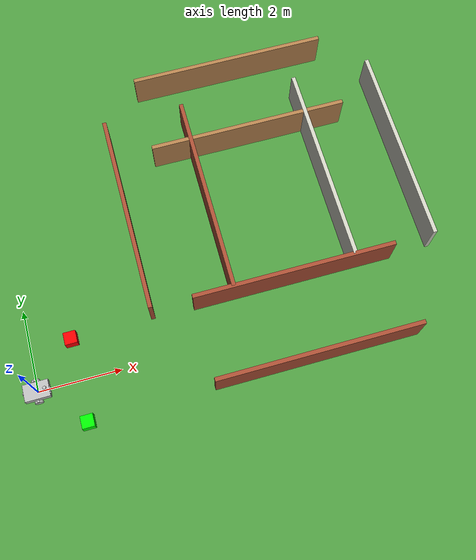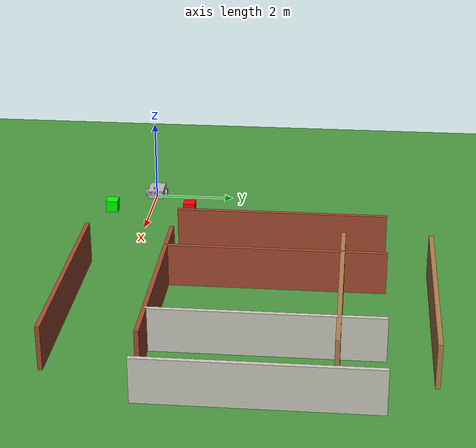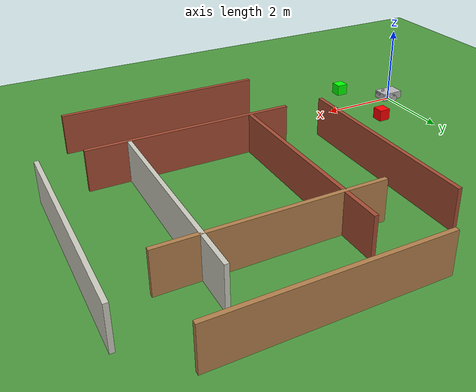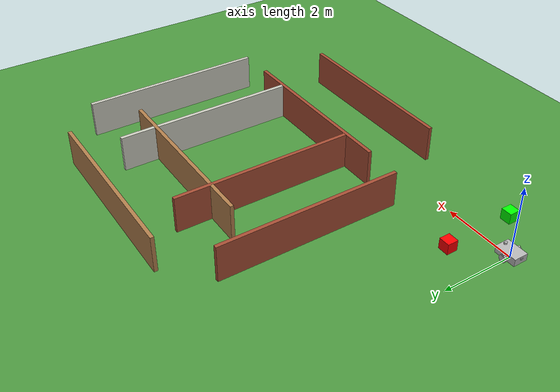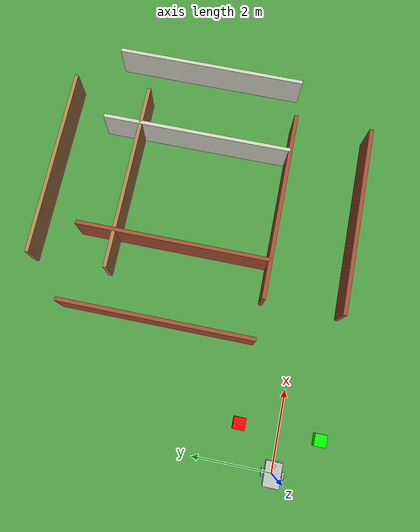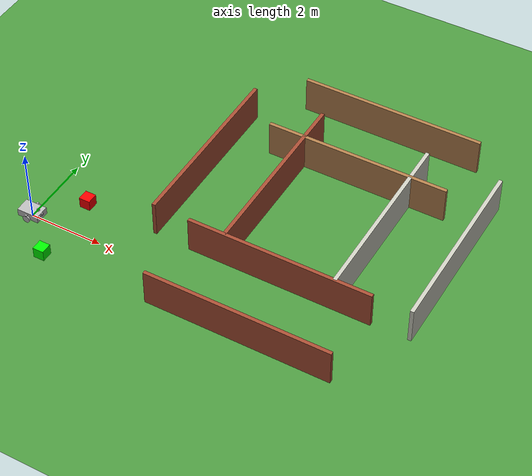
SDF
<?xml version="1.0"?>
<sdf version="1.6">
  <world name="default">
    <include><uri>model://sun</uri></include>

    <!-- ÇİM ZEMİN (Gazebo/Grass dokusu - organik/düzensiz doku) -->
    <model name="ground_plane">
      <static>true</static>
      <link name="link">
        <collision name="collision">
          <geometry><plane><normal>0 0 1</normal><size>100 100</size></plane></geometry>
        </collision>
        <visual name="visual">
          <geometry><plane><normal>0 0 1</normal><size>100 100</size></plane></geometry>
          <material>
            <script>
              <uri>file://media/materials/scripts/gazebo.material</uri>
              <name>Gazebo/Grass</name>
            </script>
          </material>
        </visual>
      </link>
    </model>

    <!-- RENKLİ REFERANS KUTULARI (Modül 4'ten) -->
    <model name="red_box">
      <static>true</static>
      <pose>1 1 0.15 0 0 0</pose>
      <link name="link">
        <visual name="visual">
          <geometry><box><size>0.3 0.3 0.3</size></box></geometry>
          <material><ambient>1 0 0 1</ambient><diffuse>1 0 0 1</diffuse></material>
        </visual>
        <collision name="collision"><geometry><box><size>0.3 0.3 0.3</size></box></geometry></collision>
      </link>
    </model>

    <model name="green_box">
      <static>true</static>
      <pose>1 -1 0.15 0 0 0</pose>
      <link name="link">
        <visual name="visual">
          <geometry><box><size>0.3 0.3 0.3</size></box></geometry>
          <material><ambient>0 1 0 1</ambient><diffuse>0 1 0 1</diffuse></material>
        </visual>
        <collision name="collision"><geometry><box><size>0.3 0.3 0.3</size></box></geometry></collision>
      </link>
    </model>

    <!-- KAPALI DÖNGÜ KORİDOR PARKURU (SLAM Loop Closure Testi İçin) -->
    <!-- KOL 1 (Doğu Yönü: leg1) -->
    <model name="wall_leg1_south">
      <static>true</static>
      <pose>6.5 -1 0.5 0 0 0</pose>
      <link name="link">
        <collision name="collision"><geometry><box><size>5 0.1 1</size></box></geometry></collision>
        <visual name="visual">
          <geometry><box><size>5 0.1 1</size></box></geometry>
          <material><script><uri>file://media/materials/scripts/gazebo.material</uri><name>Gazebo/Bricks</name></script></material>
        </visual>
      </link>
    </model>
    <model name="wall_leg1_north">
      <static>true</static>
      <pose>6.5 1 0.5 0 0 0</pose>
      <link name="link">
        <collision name="collision"><geometry><box><size>5 0.1 1</size></box></geometry></collision>
        <visual name="visual">
          <geometry><box><size>5 0.1 1</size></box></geometry>
          <material><script><uri>file://media/materials/scripts/gazebo.material</uri><name>Gazebo/Bricks</name></script></material>
        </visual>
      </link>
    </model>

    <!-- KOL 2 (Kuzey Yönü: leg2) -->
    <model name="wall_leg2_west">
      <static>true</static>
      <pose>8 3.5 0.5 0 0 0</pose>
      <link name="link">
        <collision name="collision"><geometry><box><size>0.1 5 1</size></box></geometry></collision>
        <visual name="visual">
          <geometry><box><size>0.1 5 1</size></box></geometry>
          <material><script><uri>file://media/materials/scripts/gazebo.material</uri><name>Gazebo/PaintedWall</name></script></material>
        </visual>
      </link>
    </model>
    <model name="wall_leg2_east">
      <static>true</static>
      <pose>10 3.5 0.5 0 0 0</pose>
      <link name="link">
        <collision name="collision"><geometry><box><size>0.1 5 1</size></box></geometry></collision>
        <visual name="visual">
          <geometry><box><size>0.1 5 1</size></box></geometry>
          <material><script><uri>file://media/materials/scripts/gazebo.material</uri><name>Gazebo/PaintedWall</name></script></material>
        </visual>
      </link>
    </model>

    <!-- KOL 3 (Batı Yönü: leg3) -->
    <model name="wall_leg3_south">
      <static>true</static>
      <pose>6.5 5 0.5 0 0 0</pose>
      <link name="link">
        <collision name="collision"><geometry><box><size>5 0.1 1</size></box></geometry></collision>
        <visual name="visual">
          <geometry><box><size>5 0.1 1</size></box></geometry>
          <material><script><uri>file://media/materials/scripts/gazebo.material</uri><name>Gazebo/Wood</name></script></material>
        </visual>
      </link>
    </model>
    <model name="wall_leg3_north">
      <static>true</static>
      <pose>6.5 7 0.5 0 0 0</pose>
      <link name="link">
        <collision name="collision"><geometry><box><size>5 0.1 1</size></box></geometry></collision>
        <visual name="visual">
          <geometry><box><size>5 0.1 1</size></box></geometry>
          <material><script><uri>file://media/materials/scripts/gazebo.material</uri><name>Gazebo/Wood</name></script></material>
        </visual>
      </link>
    </model>

    <!-- KOL 4 (Güney Yönü: leg4 - Döngü Birleşimi) -->
    <model name="wall_leg4_west">
      <static>true</static>
      <pose>3 3.5 0.5 0 0 0</pose>
      <link name="link">
        <collision name="collision"><geometry><box><size>0.1 5 1</size></box></geometry></collision>
        <visual name="visual">
          <geometry><box><size>0.1 5 1</size></box></geometry>
          <material><script><uri>file://media/materials/scripts/gazebo.material</uri><name>Gazebo/Bricks</name></script></material>
        </visual>
      </link>
    </model>
    <model name="wall_leg4_east">
      <static>true</static>
      <pose>5 3.5 0.5 0 0 0</pose>
      <link name="link">
        <collision name="collision"><geometry><box><size>0.1 5 1</size></box></geometry></collision>
        <visual name="visual">
          <geometry><box><size>0.1 5 1</size></box></geometry>
          <material><script><uri>file://media/materials/scripts/gazebo.material</uri><name>Gazebo/Bricks</name></script></material>
        </visual>
      </link>
    </model>

    <!-- İKA ROVER (5 KAMERALI ROBOT MODELİ)        -->
    <model name="ika_rover">

        <!-- GÖVDE -->
        <link name="base_link">
          <pose>0 0 0.15 0 0 0</pose>
          <inertial>
            <mass>5.0</mass>
            <inertia>
              <ixx>0.1</ixx><iyy>0.1</iyy><izz>0.1</izz>
              <ixy>0</ixy><ixz>0</ixz><iyz>0</iyz>
            </inertia>
          </inertial>
          <collision name="base_collision">
            <geometry><box><size>0.6 0.4 0.2</size></box></geometry>
          </collision>
          <visual name="base_visual">
            <geometry><box><size>0.6 0.4 0.2</size></box></geometry>
          </visual>
        </link>

        <!-- SOL TEKER -->
        <link name="left_wheel">
          <pose>0 0.25 0.1 1.5708 0 0</pose>
          <inertial>
            <mass>0.5</mass>
            <inertia>
              <ixx>0.01</ixx><iyy>0.01</iyy><izz>0.01</izz>
              <ixy>0</ixy><ixz>0</ixz><iyz>0</iyz>
            </inertia>
          </inertial>
          <collision name="left_wheel_collision">
            <geometry><cylinder><radius>0.1</radius><length>0.05</length></cylinder></geometry>
            <surface><friction><ode><mu>1.0</mu><mu2>1.0</mu2></ode></friction></surface>
          </collision>
          <visual name="left_wheel_visual">
            <geometry><cylinder><radius>0.1</radius><length>0.05</length></cylinder></geometry>
          </visual>
        </link>

        <!-- SAĞ TEKER -->
        <link name="right_wheel">
          <pose>0 -0.25 0.1 1.5708 0 0</pose>
          <inertial>
            <mass>0.5</mass>
            <inertia>
              <ixx>0.01</ixx><iyy>0.01</iyy><izz>0.01</izz>
              <ixy>0</ixy><ixz>0</ixz><iyz>0</iyz>
            </inertia>
          </inertial>
          <collision name="right_wheel_collision">
            <geometry><cylinder><radius>0.1</radius><length>0.05</length></cylinder></geometry>
            <surface><friction><ode><mu>1.0</mu><mu2>1.0</mu2></ode></friction></surface>
          </collision>
          <visual name="right_wheel_visual">
            <geometry><cylinder><radius>0.1</radius><length>0.05</length></cylinder></geometry>
          </visual>
        </link>

        <!-- DENGE TEKERİ (ARKA CASTER) -->
        <link name="caster_wheel">
          <pose>-0.2 0 0.05 0 0 0</pose>
          <inertial>
            <mass>0.2</mass>
            <inertia>
              <ixx>0.0001</ixx><iyy>0.0001</iyy><izz>0.0001</izz>
              <ixy>0</ixy><ixz>0</ixz><iyz>0</iyz>
            </inertia>
          </inertial>
          <collision name="caster_collision">
            <geometry><sphere><radius>0.05</radius></sphere></geometry>
            <surface><friction><ode><mu>0</mu><mu2>0</mu2></ode></friction></surface>
          </collision>
          <visual name="caster_visual">
            <geometry><sphere><radius>0.05</radius></sphere></geometry>
          </visual>
        </link>

        <joint name="left_wheel_joint" type="revolute">
          <parent>base_link</parent>
          <child>left_wheel</child>
          <axis>
            <xyz>0 1 0</xyz>
            <use_parent_model_frame>1</use_parent_model_frame>
            <limit><lower>-1e+16</lower><upper>1e+16</upper></limit>
          </axis>
        </joint>

        <joint name="right_wheel_joint" type="revolute">
          <parent>base_link</parent>
          <child>right_wheel</child>
          <axis>
            <xyz>0 1 0</xyz>
            <use_parent_model_frame>1</use_parent_model_frame>
            <limit><lower>-1e+16</lower><upper>1e+16</upper></limit>
          </axis>
        </joint>

        <joint name="caster_joint" type="fixed">
          <parent>base_link</parent>
          <child>caster_wheel</child>
        </joint>

        <!-- IMU -->
        <link name="imu_link">
          <pose>0 0 0.25 0 0 0</pose>
          <inertial>
            <mass>0.015</mass>
            <inertia><ixx>1e-05</ixx><ixy>0</ixy><ixz>0</ixz><iyy>1e-05</iyy><iyz>0</iyz><izz>1e-05</izz></inertia>
          </inertial>
          <sensor name="imu_sensor" type="imu">
            <always_on>1</always_on>
            <update_rate>50.0</update_rate>
          </sensor>
        </link>
        <joint name="imu_joint" type="fixed">
          <parent>base_link</parent>
          <child>imu_link</child>
        </joint>

        <!-- LIDAR -->
        <link name="lidar_link">
          <pose>0.2 0 0.3 0 0 0</pose>
          <inertial>
            <mass>0.1</mass>
            <inertia><ixx>0.0001</ixx><iyy>0.0001</iyy><izz>0.0001</izz><ixy>0</ixy><ixz>0</ixz><iyz>0</iyz></inertia>
          </inertial>
          <visual name="lidar_visual">
            <geometry><cylinder><radius>0.04</radius><length>0.05</length></cylinder></geometry>
          </visual>
          <sensor name="lidar_sensor" type="ray">
            <always_on>true</always_on>
            <update_rate>10</update_rate>
            <ray>
              <scan>
                <horizontal>
                  <samples>360</samples>
                  <resolution>1</resolution>
                  <min_angle>-3.14159</min_angle>
                  <max_angle>3.14159</max_angle>
                </horizontal>
              </scan>
              <range><min>0.12</min><max>10.0</max><resolution>0.015</resolution></range>
            </ray>
            <plugin name="lidar_plugin" filename="libgazebo_ros_ray_sensor.so">
              <ros><namespace>/</namespace><remapping>~/out:=scan</remapping></ros>
              <output_type>sensor_msgs/LaserScan</output_type>
              <frame_name>lidar_link</frame_name>
            </plugin>
          </sensor>
        </link>
        <joint name="lidar_joint" type="fixed">
          <parent>base_link</parent>
          <child>lidar_link</child>
        </joint>

        <!-- 1. KAMERA: ÖN SOL (ANA KAMERA) -->
        <link name="camera_link">
          <pose>0.3 0 0.2 0 0 0</pose>
          <inertial>
            <mass>0.05</mass>
            <inertia><ixx>0.0001</ixx><iyy>0.0001</iyy><izz>0.0001</izz><ixy>0</ixy><ixz>0</ixz><iyz>0</iyz></inertia>
          </inertial>
          <visual name="camera_visual"><geometry><box><size>0.05 0.05 0.05</size></box></geometry></visual>
          <sensor name="camera_sensor" type="camera">
            <always_on>true</always_on>
            <update_rate>30</update_rate>
            <camera>
              <horizontal_fov>1.396</horizontal_fov>
              <image><width>640</width><height>480</height><format>R8G8B8</format></image>
              <clip><near>0.05</near><far>15</far></clip>
            </camera>
            <plugin name="camera_plugin" filename="libgazebo_ros_camera.so">
              <ros><namespace>/ika_rover</namespace></ros>
              <frame_name>camera_optical_frame</frame_name>
            </plugin>
          </sensor>
        </link>
        <joint name="camera_joint" type="fixed">
          <parent>base_link</parent>
          <child>camera_link</child>
        </joint>

        <!-- 2. KAMERA: ÖN SAĞ (STEREO ÇİFT, baseline = 12cm) -->
        <link name="right_camera_link">
          <pose>0.3 -0.12 0.2 0 0 0</pose>
          <inertial>
            <mass>0.05</mass>
            <inertia><ixx>0.0001</ixx><iyy>0.0001</iyy><izz>0.0001</izz><ixy>0</ixy><ixz>0</ixz><iyz>0</iyz></inertia>
          </inertial>
          <visual name="right_camera_visual"><geometry><box><size>0.05 0.05 0.05</size></box></geometry></visual>
          <sensor name="right_camera_sensor" type="camera">
            <always_on>true</always_on>
            <update_rate>30</update_rate>
            <camera>
              <horizontal_fov>1.396</horizontal_fov>
              <image><width>640</width><height>480</height><format>R8G8B8</format></image>
              <clip><near>0.05</near><far>15</far></clip>
            </camera>
            <plugin name="right_camera_plugin" filename="libgazebo_ros_camera.so">
              <ros><namespace>/ika_rover</namespace></ros>
              <frame_name>right_camera_optical_frame</frame_name>
            </plugin>
          </sensor>
        </link>
        <joint name="right_camera_joint" type="fixed">
          <parent>base_link</parent>
          <child>right_camera_link</child>
        </joint>

        <!-- 3. KAMERA: SAĞ MONO (yaw = -1.5708) -->
        <link name="side_right_camera_link">
          <pose>0 -0.25 0.2 0 0 -1.5708</pose>
          <inertial>
            <mass>0.05</mass>
            <inertia><ixx>0.0001</ixx><iyy>0.0001</iyy><izz>0.0001</izz><ixy>0</ixy><ixz>0</ixz><iyz>0</iyz></inertia>
          </inertial>
          <visual name="side_right_camera_visual"><geometry><box><size>0.05 0.05 0.05</size></box></geometry></visual>
          <sensor name="side_right_camera_sensor" type="camera">
            <always_on>true</always_on>
            <update_rate>30</update_rate>
            <camera>
              <horizontal_fov>1.396</horizontal_fov>
              <image><width>640</width><height>480</height><format>R8G8B8</format></image>
              <clip><near>0.05</near><far>15</far></clip>
            </camera>
            <plugin name="side_right_camera_plugin" filename="libgazebo_ros_camera.so">
              <ros><namespace>/ika_rover</namespace></ros>
              <frame_name>side_right_camera_optical_frame</frame_name>
            </plugin>
          </sensor>
        </link>
        <joint name="side_right_camera_joint" type="fixed">
          <parent>base_link</parent>
          <child>side_right_camera_link</child>
        </joint>

        <!-- 4. KAMERA: SOL MONO (yaw = 1.5708) -->
        <link name="side_left_camera_link">
          <pose>0 0.25 0.2 0 0 1.5708</pose>
          <inertial>
            <mass>0.05</mass>
            <inertia><ixx>0.0001</ixx><iyy>0.0001</iyy><izz>0.0001</izz><ixy>0</ixy><ixz>0</ixz><iyz>0</iyz></inertia>
          </inertial>
          <visual name="side_left_camera_visual"><geometry><box><size>0.05 0.05 0.05</size></box></geometry></visual>
          <sensor name="side_left_camera_sensor" type="camera">
            <always_on>true</always_on>
            <update_rate>30</update_rate>
            <camera>
              <horizontal_fov>1.396</horizontal_fov>
              <image><width>640</width><height>480</height><format>R8G8B8</format></image>
              <clip><near>0.05</near><far>15</far></clip>
            </camera>
            <plugin name="side_left_camera_plugin" filename="libgazebo_ros_camera.so">
              <ros><namespace>/ika_rover</namespace></ros>
              <frame_name>side_left_camera_optical_frame</frame_name>
            </plugin>
          </sensor>
        </link>
        <joint name="side_left_camera_joint" type="fixed">
          <parent>base_link</parent>
          <child>side_left_camera_link</child>
        </joint>

        <!-- 5. KAMERA: ARKA MONO (yaw = 3.14159) -->
        <link name="rear_camera_link">
          <pose>-0.3 0 0.2 0 0 3.14159</pose>
          <inertial>
            <mass>0.05</mass>
            <inertia><ixx>0.0001</ixx><iyy>0.0001</iyy><izz>0.0001</izz><ixy>0</ixy><ixz>0</ixz><iyz>0</iyz></inertia>
          </inertial>
          <visual name="rear_camera_visual"><geometry><box><size>0.05 0.05 0.05</size></box></geometry></visual>
          <sensor name="rear_camera_sensor" type="camera">
            <always_on>true</always_on>
            <update_rate>30</update_rate>
            <camera>
              <horizontal_fov>1.396</horizontal_fov>
              <image><width>640</width><height>480</height><format>R8G8B8</format></image>
              <clip><near>0.05</near><far>15</far></clip>
            </camera>
            <plugin name="rear_camera_plugin" filename="libgazebo_ros_camera.so">
              <ros><namespace>/ika_rover</namespace></ros>
              <frame_name>rear_camera_optical_frame</frame_name>
            </plugin>
          </sensor>
        </link>
        <joint name="rear_camera_joint" type="fixed">
          <parent>base_link</parent>
          <child>rear_camera_link</child>
        </joint>

        <!-- DİFERANSİYEL SÜRÜŞ -->
        <plugin name="diff_drive" filename="libgazebo_ros_diff_drive.so">
          <ros><namespace>/</namespace></ros>
          <update_rate>30</update_rate>
          <left_joint>left_wheel_joint</left_joint>
          <right_joint>right_wheel_joint</right_joint>
          <wheel_separation>0.5</wheel_separation>
          <wheel_diameter>0.2</wheel_diameter>
          <max_wheel_torque>20</max_wheel_torque>
          <max_wheel_acceleration>1.0</max_wheel_acceleration>
          <command_topic>cmd_vel</command_topic>
          <odometry_topic>odom</odometry_topic>
          <odometry_frame>odom</odometry_frame>
          <robot_base_frame>base_link</robot_base_frame>
          <publish_odom>true</publish_odom>
          <publish_odom_tf>true</publish_odom_tf>
          <publish_wheel_tf>false</publish_wheel_tf>
        </plugin>

      </model>

  </world>
</sdf>
